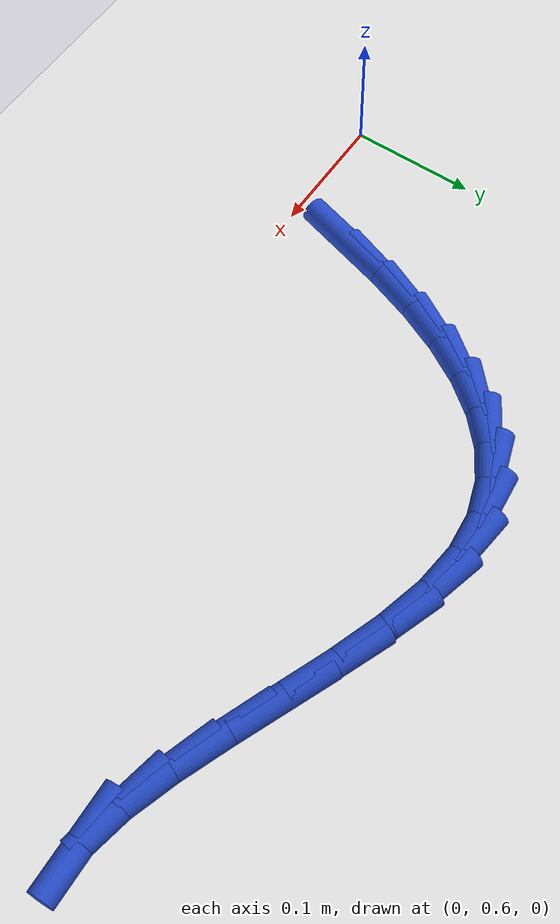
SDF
<sdf version="1.6">
 <world name="default">
  <model name="ground_plane">
   <static>1</static>
   <link name="link">
    <collision name="collision">
     <geometry><plane><normal>0 0 1</normal><size>100 100</size></plane></geometry>
     <surface><friction><ode><mu>100</mu><mu2>50</mu2></ode></friction></surface>
    </collision>
    <visual name="visual">
     <cast_shadows>0</cast_shadows>
     <geometry><plane><normal>0 0 1</normal><size>100 100</size></plane></geometry>
     <material>
      <script><uri>file://media/materials/scripts/gazebo.material</uri><name>Gazebo/WhiteGlow</name></script>
     </material>
    </visual>
   </link>
  </model>
  <model name="line">
   <link name="link_17">
    <pose>0.10093805302343087 0.6528857598095943 0.01 0 1.57 1.2984128728582403</pose>
    <collision name="collision">
     <geometry><cylinder><radius>0.01</radius><length>0.08</length></cylinder></geometry>
    </collision>
    <visual name="visual">
     <material>
      <script><name>Gazebo/Blue</name><uri>file://media/materials/scripts/gazebo.material</uri></script>
     </material>
     <geometry><cylinder><radius>0.01</radius><length>0.08</length></cylinder></geometry>
    </visual>
   </link>
   <link name="link_18">
    <pose>0.11172059048531988 0.6914877634936708 0.01 0 1.57 1.237458272681989</pose>
    <collision name="collision">
     <geometry><cylinder><radius>0.01</radius><length>0.08</length></cylinder></geometry>
    </collision>
    <visual name="visual">
     <material>
      <script><name>Gazebo/Blue</name><uri>file://media/materials/scripts/gazebo.material</uri></script>
     </material>
     <geometry><cylinder><radius>0.01</radius><length>0.08</length></cylinder></geometry>
    </visual>
   </link>
   <link name="link_19">
    <pose>0.12416593118723575 0.7274300684918995 0.01 0 1.57 1.1582842394005377</pose>
    <collision name="collision">
     <geometry><cylinder><radius>0.01</radius><length>0.08</length></cylinder></geometry>
    </collision>
    <visual name="visual">
     <material>
      <script><name>Gazebo/Blue</name><uri>file://media/materials/scripts/gazebo.material</uri></script>
     </material>
     <geometry><cylinder><radius>0.01</radius><length>0.08</length></cylinder></geometry>
    </visual>
   </link>
   <link name="link_20">
    <pose>0.13850550939424022 0.760197176804106 0.01 0 1.57 1.0555437364735083</pose>
    <collision name="collision">
     <geometry><cylinder><radius>0.01</radius><length>0.08</length></cylinder></geometry>
    </collision>
    <visual name="visual">
     <material>
      <script><name>Gazebo/Blue</name><uri>file://media/materials/scripts/gazebo.material</uri></script>
     </material>
     <geometry><cylinder><radius>0.01</radius><length>0.08</length></cylinder></geometry>
    </visual>
   </link>
   <link name="link_21">
    <pose>0.15497075937139515 0.7892735904301154 0.01 0 1.57 0.9229427597832834</pose>
    <collision name="collision">
     <geometry><cylinder><radius>0.01</radius><length>0.08</length></cylinder></geometry>
    </collision>
    <visual name="visual">
     <material>
      <script><name>Gazebo/Blue</name><uri>file://media/materials/scripts/gazebo.material</uri></script>
     </material>
     <geometry><cylinder><radius>0.01</radius><length>0.08</length></cylinder></geometry>
    </visual>
   </link>
   <link name="link_22">
    <pose>0.17379311538376235 0.8141438113697528 0.01 0 1.57 0.7550325365634782</pose>
    <collision name="collision">
     <geometry><cylinder><radius>0.01</radius><length>0.08</length></cylinder></geometry>
    </collision>
    <visual name="visual">
     <material>
      <script><name>Gazebo/Blue</name><uri>file://media/materials/scripts/gazebo.material</uri></script>
     </material>
     <geometry><cylinder><radius>0.01</radius><length>0.08</length></cylinder></geometry>
    </visual>
   </link>
   <link name="link_23">
    <pose>0.19520401169640353 0.834292341622844 0.01 0 1.57 0.5516560724379624</pose>
    <collision name="collision">
     <geometry><cylinder><radius>0.01</radius><length>0.08</length></cylinder></geometry>
    </collision>
    <visual name="visual">
     <material>
      <script><name>Gazebo/Blue</name><uri>file://media/materials/scripts/gazebo.material</uri></script>
     </material>
     <geometry><cylinder><radius>0.01</radius><length>0.08</length></cylinder></geometry>
    </visual>
   </link>
   <link name="link_24">
    <pose>0.21943488257438062 0.8492036831892145 0.01 0 1.57 0.3238788285160609</pose>
    <collision name="collision">
     <geometry><cylinder><radius>0.01</radius><length>0.08</length></cylinder></geometry>
    </collision>
    <visual name="visual">
     <material>
      <script><name>Gazebo/Blue</name><uri>file://media/materials/scripts/gazebo.material</uri></script>
     </material>
     <geometry><cylinder><radius>0.01</radius><length>0.08</length></cylinder></geometry>
    </visual>
   </link>
   <link name="link_25">
    <pose>0.24671716228275534 0.8583623380686894 0.01 0 1.57 0.09428719234940389</pose>
    <collision name="collision">
     <geometry><cylinder><radius>0.01</radius><length>0.08</length></cylinder></geometry>
    </collision>
    <visual name="visual">
     <material>
      <script><name>Gazebo/Blue</name><uri>file://media/materials/scripts/gazebo.material</uri></script>
     </material>
     <geometry><cylinder><radius>0.01</radius><length>0.08</length></cylinder></geometry>
    </visual>
   </link>
   <link name="link_26">
    <pose>0.2772822850865895 0.861252808261094 0.01 0 1.57 -0.11207806475570599</pose>
    <collision name="collision">
     <geometry><cylinder><radius>0.01</radius><length>0.08</length></cylinder></geometry>
    </collision>
    <visual name="visual">
     <material>
      <script><name>Gazebo/Blue</name><uri>file://media/materials/scripts/gazebo.material</uri></script>
     </material>
     <geometry><cylinder><radius>0.01</radius><length>0.08</length></cylinder></geometry>
    </visual>
   </link>
   <link name="link_27">
    <pose>0.3113272808725779 0.8574210533799003 0.01 0 1.57 -0.25873900367864067</pose>
    <collision name="collision">
     <geometry><cylinder><radius>0.01</radius><length>0.08</length></cylinder></geometry>
    </collision>
    <visual name="visual">
     <material>
      <script><name>Gazebo/Blue</name><uri>file://media/materials/scripts/gazebo.material</uri></script>
     </material>
     <geometry><cylinder><radius>0.01</radius><length>0.08</length></cylinder></geometry>
    </visual>
   </link>
   <link name="link_28">
    <pose>0.34837616490626433 0.8476152600378117 0.01 0 1.57 -0.3434949601912979</pose>
    <collision name="collision">
     <geometry><cylinder><radius>0.01</radius><length>0.08</length></cylinder></geometry>
    </collision>
    <visual name="visual">
     <material>
      <script><name>Gazebo/Blue</name><uri>file://media/materials/scripts/gazebo.material</uri></script>
     </material>
     <geometry><cylinder><radius>0.01</radius><length>0.08</length></cylinder></geometry>
    </visual>
   </link>
   <link name="link_29">
    <pose>0.3873397503996484 0.8336789967925731 0.01 0 1.57 -0.386485069874754</pose>
    <collision name="collision">
     <geometry><cylinder><radius>0.01</radius><length>0.08</length></cylinder></geometry>
    </collision>
    <visual name="visual">
     <material>
      <script><name>Gazebo/Blue</name><uri>file://media/materials/scripts/gazebo.material</uri></script>
     </material>
     <geometry><cylinder><radius>0.01</radius><length>0.08</length></cylinder></geometry>
    </visual>
   </link>
   <link name="link_30">
    <pose>0.4271064411937049 0.8174958627600105 0.01 0 1.57 -0.39706691498467167</pose>
    <collision name="collision">
     <geometry><cylinder><radius>0.01</radius><length>0.08</length></cylinder></geometry>
    </collision>
    <visual name="visual">
     <material>
      <script><name>Gazebo/Blue</name><uri>file://media/materials/scripts/gazebo.material</uri></script>
     </material>
     <geometry><cylinder><radius>0.01</radius><length>0.08</length></cylinder></geometry>
    </visual>
   </link>
   <link name="link_31">
    <pose>0.466564641129408 0.8009494570559501 0.01 0 1.57 -0.37621189365036883</pose>
    <collision name="collision">
     <geometry><cylinder><radius>0.01</radius><length>0.08</length></cylinder></geometry>
    </collision>
    <visual name="visual">
     <material>
      <script><name>Gazebo/Blue</name><uri>file://media/materials/scripts/gazebo.material</uri></script>
     </material>
     <geometry><cylinder><radius>0.01</radius><length>0.08</length></cylinder></geometry>
    </visual>
   </link>
   <link name="link_32">
    <pose>0.5046027540477327 0.7859233787962181 0.01 0 1.57 -0.31633358657860455</pose>
    <collision name="collision">
     <geometry><cylinder><radius>0.01</radius><length>0.08</length></cylinder></geometry>
    </collision>
    <visual name="visual">
     <material>
      <script><name>Gazebo/Blue</name><uri>file://media/materials/scripts/gazebo.material</uri></script>
     </material>
     <geometry><cylinder><radius>0.01</radius><length>0.08</length></cylinder></geometry>
    </visual>
   </link>
   <link name="link_33">
    <pose>0.5401091837896534 0.7743012270966407 0.01 0 1.57 -0.19624844381312415</pose>
    <collision name="collision">
     <geometry><cylinder><radius>0.01</radius><length>0.08</length></cylinder></geometry>
    </collision>
    <visual name="visual">
     <material>
      <script><name>Gazebo/Blue</name><uri>file://media/materials/scripts/gazebo.material</uri></script>
     </material>
     <geometry><cylinder><radius>0.01</radius><length>0.08</length></cylinder></geometry>
    </visual>
   </link>
   <link name="link_34">
    <pose>0.5719723341961447 0.7679666010730446 0.01 0 1.57 0.030847902295947048</pose>
    <collision name="collision">
     <geometry><cylinder><radius>0.01</radius><length>0.08</length></cylinder></geometry>
    </collision>
    <visual name="visual">
     <material>
      <script><name>Gazebo/Blue</name><uri>file://media/materials/scripts/gazebo.material</uri></script>
     </material>
     <geometry><cylinder><radius>0.01</radius><length>0.08</length></cylinder></geometry>
    </visual>
   </link>
  </model>
 </world>
</sdf>
